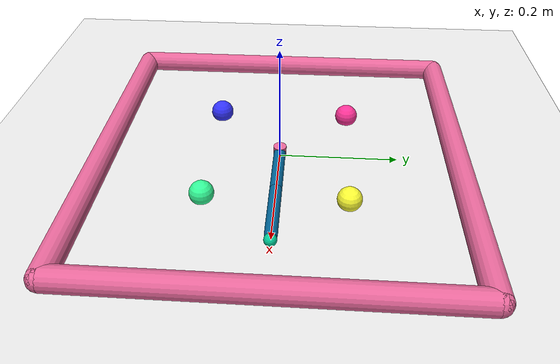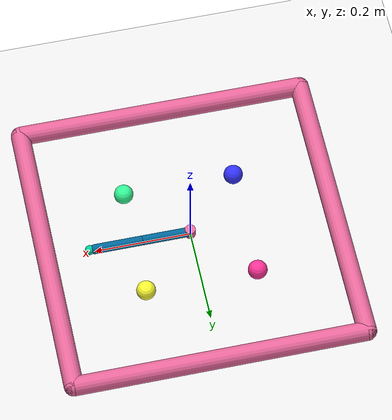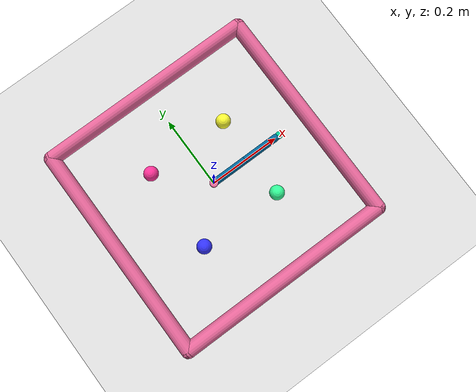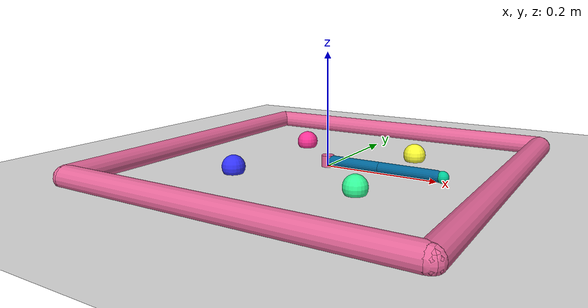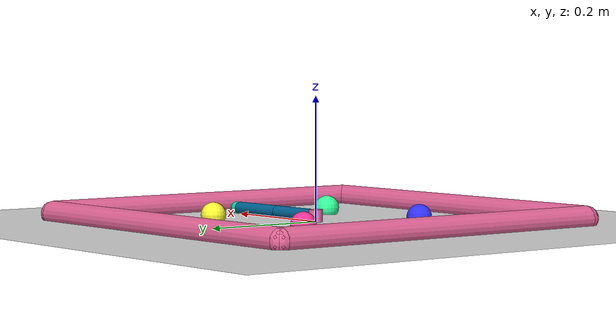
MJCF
<mujoco model="reacher">
	<compiler angle="radian" inertiafromgeom="true"/>
	<default>
		<joint armature="1" damping="1" limited="true"/>
        <geom contype="0" friction="1 0.1 0.1" rgba="1 0 0 1"/>

	</default>
	<option gravity="0 0 -9.81" integrator="RK4" timestep="0.01"/>
	<worldbody>
		<!-- Arena -->
		<geom conaffinity="0" contype="0" name="ground" pos="0 0 0" rgba="0.9 0.9 0.9 1" size="1 1 10" type="plane"/>
		<geom conaffinity="0" fromto="-.3 -.3 .01 .3 -.3 .01" name="sideS" rgba="0.9 0.4 0.6 1" size=".02" type="capsule"/>
		<geom conaffinity="0" fromto=" .3 -.3 .01 .3  .3 .01" name="sideE" rgba="0.9 0.4 0.6 1" size=".02" type="capsule"/>
		<geom conaffinity="0" fromto="-.3  .3 .01 .3  .3 .01" name="sideN" rgba="0.9 0.4 0.6 1" size=".02" type="capsule"/>
		<geom conaffinity="0" fromto="-.3 -.3 .01 -.3 .3 .01" name="sideW" rgba="0.9 0.4 0.6 1" size=".02" type="capsule"/>
		<!-- Arm -->
		<geom conaffinity="0" contype="0" fromto="0 0 0 0 0 0.02" name="root" rgba="0.9 0.4 0.6 1" size=".011" type="cylinder"/>
		<body name="body0" pos="0 0 .01">
			<geom fromto="0 0 0 0.1 0 0" name="link0" rgba="0.0 0.4 0.6 1" size=".01" type="capsule"/>
			<joint axis="0 0 1" limited="false" name="joint0" pos="0 0 0" type="hinge"/>
            <body name="body1" pos="0.1 0 0">
                <joint axis="0 0 1" limited="true" name="joint1" pos="0 0 0" range="-3.0 3.0" type="hinge"/>
                <geom fromto="0 0 0 0.1 0 0" name="link1" rgba="0.0 0.4 0.6 1" size=".01" type="capsule"/>
				<body name="fingertip" pos="0.11 0 0">
					<geom contype="0" name="fingertip" pos="0 0 0" rgba="0.0 0.8 0.6 1" size=".01" type="sphere"/>
				</body>
			</body>
		</body>
		<!-- Target -->
		<body name="target_1" pos="0 0 .01">
			<joint armature="0" axis="1 0 0" damping="0" limited="true" name="target_x_1" pos="0 0 0" range="-.27 .27" stiffness="0" type="slide"/>
			<joint armature="0" axis="0 1 0" damping="0" limited="true" name="target_y_1" pos="0 0 0" range="-.27 .27" stiffness="0" type="slide"/>
			<geom conaffinity="0" contype="0" name="target_1" pos="0.116 0.116 0" rgba="1 1 0.2 1" size=".02" type="sphere"/>
		</body>
        <body name="target_2" pos="0 0 .01">
			<joint armature="0" axis="1 0 0" damping="0" limited="true" name="target_x_2" pos="0 0 0" range="-.27 .27" stiffness="0" type="slide"/>
			<joint armature="0" axis="0 1 0" damping="0" limited="true" name="target_y_2" pos="0 0 0" range="-.27 .27" stiffness="0" type="slide"/>
			<geom conaffinity="0" contype="0" name="target" pos="0.116 -0.116 0" rgba="0.2 1 0.6 1" size=".02" type="sphere"/>
		</body>
        <body name="target_3" pos="0 0 .01">
			<joint armature="0" axis="1 0 0" damping="0" limited="true" name="target_x_3" pos="0 0 0" range="-.27 .27" stiffness="0" type="slide"/>
			<joint armature="0" axis="0 1 0" damping="0" limited="true" name="target_y_3" pos="0 0 0" range="-.27 .27" stiffness="0" type="slide"/>
			<geom conaffinity="0" contype="0" name="target_3" pos="-0.116 -0.116 0" rgba="0.2 0.2 1 1" size=".02" type="sphere"/>
		</body>
        <body name="target_4" pos="0 0 .01">
			<joint armature="0" axis="1 0 0" damping="0" limited="true" name="target_x_4" pos="0 0 0" range="-.27 .27" stiffness="0" type="slide"/>
			<joint armature="0" axis="0 1 0" damping="0" limited="true" name="target_y_4" pos="0 0 0" range="-.27 .27" stiffness="0" type="slide"/>
            <geom conaffinity="0" contype="0" name="target_4" pos="-0.116 0.116 0" rgba="1 0.2 0.6 1" size=".02" type="sphere"/>
		</body>

	</worldbody>
	<actuator>
		<motor ctrllimited="true" ctrlrange="-1.0 1.0" gear="200.0" joint="joint0"/>
		<motor ctrllimited="true" ctrlrange="-1.0 1.0" gear="200.0" joint="joint1"/>
	</actuator>
</mujoco>
